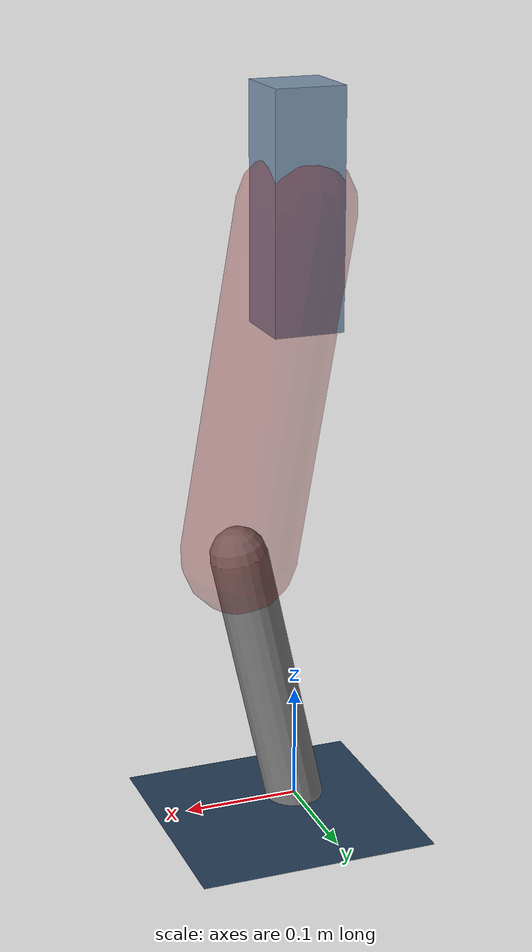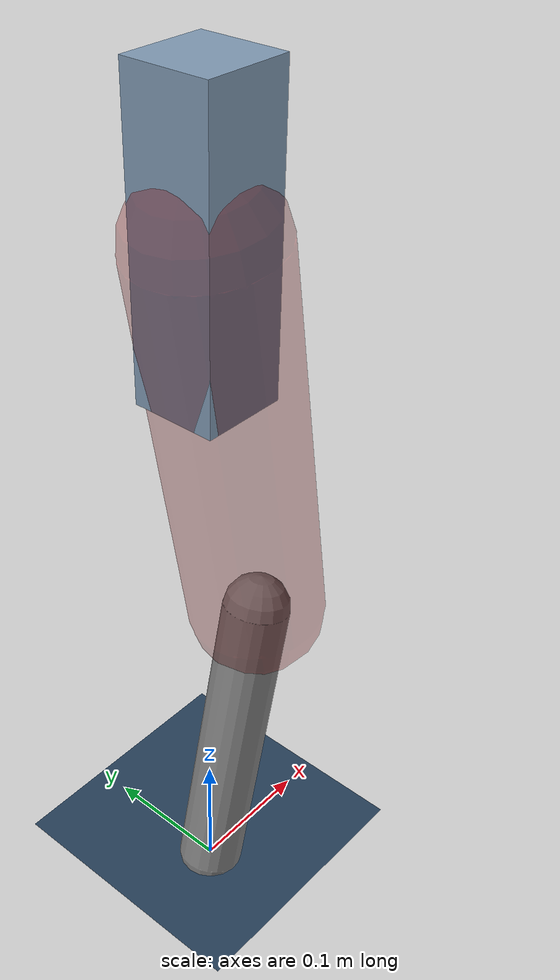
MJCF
<mujoco model="Hopper2D">
	<compiler inertiafromgeom="true" angle="radian" />
	<option timestep="0.001" integrator="implicit" cone="elliptic" solver="Newton" tolerance="1e-10" />

	<default>
		<geom contype="1" conaffinity="1" condim="3" friction="2 0.005 0.0001" solref="0.005 1" />
		<joint limited="true" damping="0.1" />
	</default>

	<asset>
		<texture name="skybox" type="skybox" builtin="gradient" rgb1=".4 .6 .8" rgb2="0 0 0" width="800" height="800" />
		<texture name="grid" type="2d" builtin="checker" rgb1=".1 .2 .3" rgb2=".2 .3 .4" width="300" height="300" mark="edge" markrgb=".2 .3 .4" />
		<material name="ground" texture="grid" texrepeat="1 1" texuniform="true" reflectance="0.1" />
		<material name="leg" rgba="0.5 0.6 0.7 1" />
	</asset>

	<worldbody>

		<geom name="floor" type="plane" size="5 5 0.25" material="ground" />

		<light directional="false" diffuse="0.8 0.8 0.8" specular="0.3 0.3 0.3" pos="0 0 2" dir="0 0 -1" />
		<light mode="targetbodycom" target="base" directional="false" diffuse="0.8 0.8 0.8" specular="0.3 0.3 0.3" pos="0 0 2" dir="0 0 -1" />

		<camera name="fixed" pos="0 -2 1" xyaxes="1 0 0 0 0 1" />
		<camera name="tracking" mode="trackcom" pos="0 -3 1" />

		<body name="root" pos="0 0 0.5280330959371269">
			<joint name="slide_x" type="slide" axis="1 0 0" range="-100 100" />
			<joint name="slide_z" type="slide" axis="0 0 1" range="0 10" />

			<body name="base" pos="0 0 0">
				<geom name="torso" type="box" size="0.03 0.03 0.1" mass="3.745" material="leg" />

				<body name="link1" pos="0 0 0" euler="0 1.398358057485916 0">
					<joint type="hinge" axis="0 -1 0" pos="0 0 0" name="hinge1" limited="true" range="-3.14 3.14" stiffness="0" damping="0.1" />
					<geom name="thigh" type="capsule" fromto="0 0 0 0.29893471789203235 0 0" size="0.05" rgba="0.5 0 0 0.3" mass="0.9858237383084874" />

					<body name="link2" pos="0.29893471789203235 0 0" euler="0 0.3886442797498116 0">
						<joint type="hinge" axis="0 -1 0" pos="0 0 0" name="hinge2" limited="true" range="-3.14 3.14" stiffness="0" damping="0.1" />
						<geom name="shank" type="capsule" fromto="0 0 0 0.2390983780450946 0 0" size="0.025" mass="0.43348854024058514" />

					</body>
				</body>
			</body>
		</body>
	</worldbody>

	<actuator>
		<motor name="torque1" joint="hinge1" ctrlrange="-167.92854966112225 167.92854966112225" ctrllimited="true" gear="1" />
		<motor name="torque2" joint="hinge2" ctrlrange="-59.62714309957977 59.62714309957977" ctrllimited="true" gear="1" />
	</actuator>
</mujoco>
